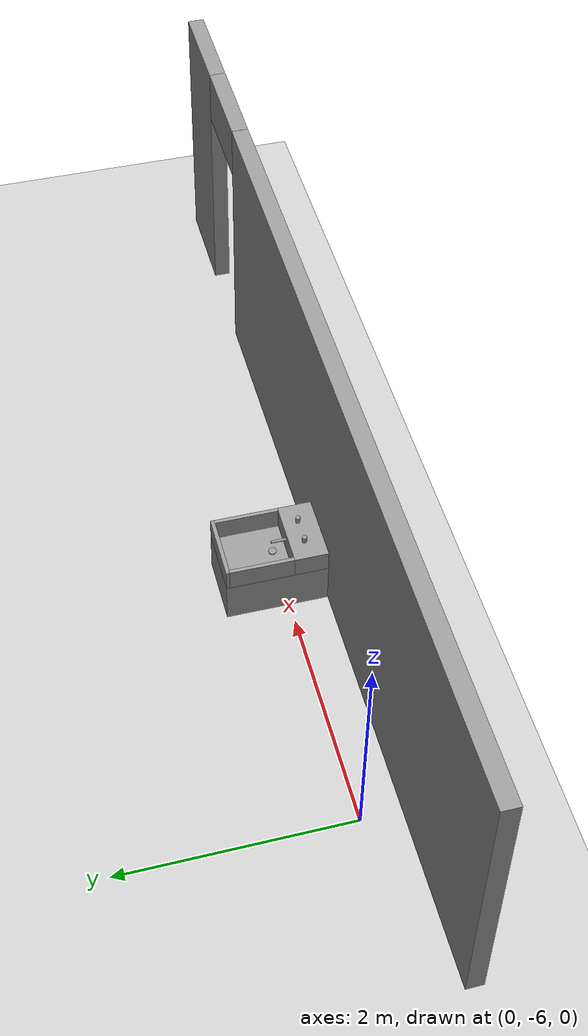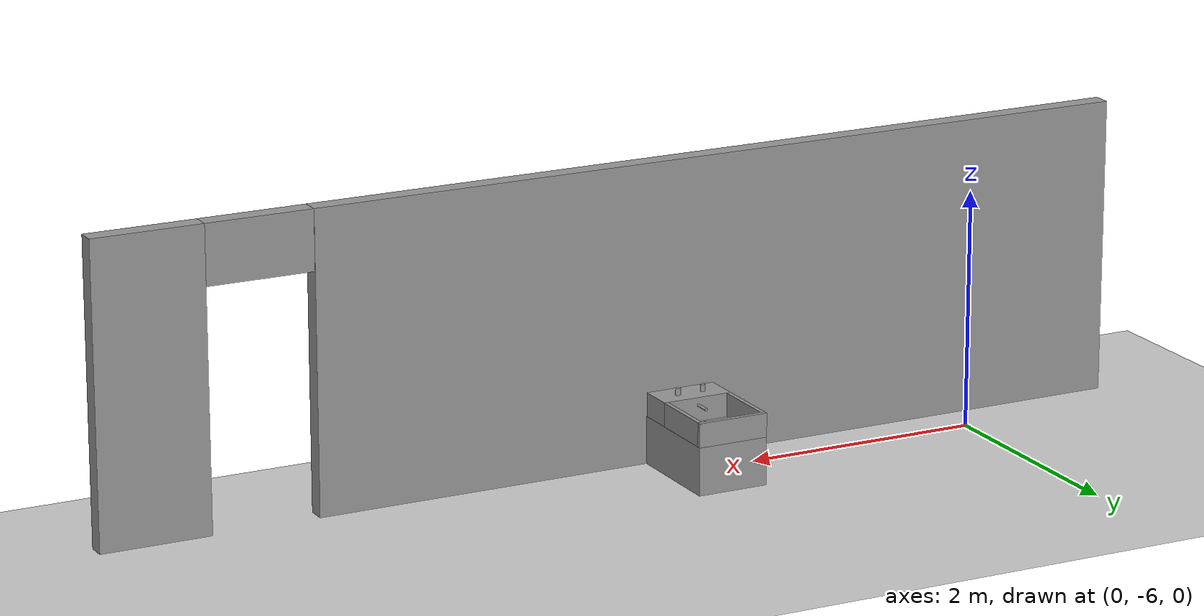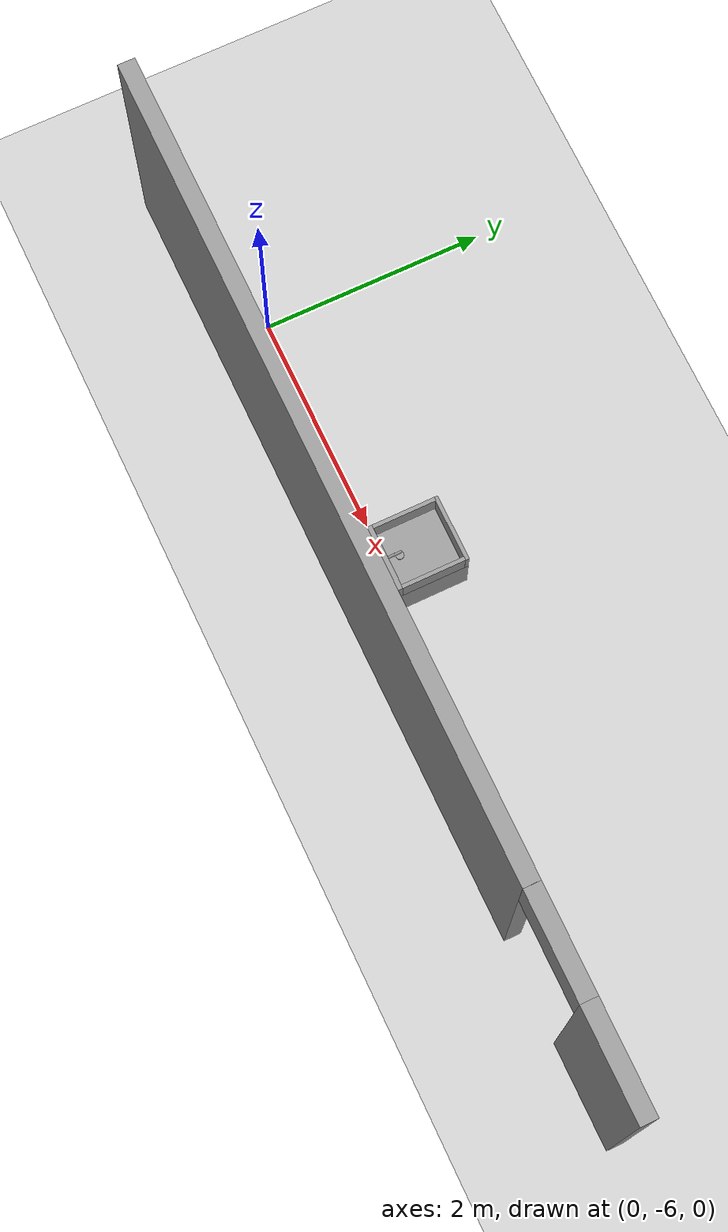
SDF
<sdf version="1.7">
 <world name="default">
  <model name="ground_plane">
   <static>1</static>
   <link name="link">
    <collision name="collision">
     <geometry><plane><normal>0 0 1</normal><size>100 100</size></plane></geometry>
     <surface>
      <contact><collide_bitmask>65535</collide_bitmask></contact>
      <friction><ode><mu>100</mu><mu2>50</mu2></ode></friction>
     </surface>
    </collision>
    <visual name="visual">
     <cast_shadows>0</cast_shadows>
     <geometry><plane><normal>0 0 1</normal><size>100 100</size></plane></geometry>
     <material>
      <script><uri>file://media/materials/scripts/gazebo.material</uri><name>Gazebo/Grey</name></script>
     </material>
    </visual>
   </link>
  </model>
  <model name="my_building_p4">
   <link name="Wall_32">
    <pose>2.925 -9.38492 0 0 -0 0</pose>
    <inertial>
     <mass>1</mass>
     <inertia><ixx>1</ixx><ixy>0</ixy><ixz>0</ixz><iyy>1</iyy><iyz>0</iyz><izz>1</izz></inertia>
    </inertial>
    <visual name="Wall_32_Visual_1">
     <pose>4.11059 0 1.25 0 -0 0</pose>
     <geometry><box><size>0.928826 0.15 2.5</size></box></geometry>
     <material>
      <script><uri>file://media/materials/scripts/gazebo.material</uri><name>Gazebo/Grey</name></script>
      <ambient>1 1 1 1</ambient>
      <shader type="pixel"><normal_map>__default__</normal_map></shader>
      <diffuse>0.7 0.7 0.7 1</diffuse>
      <specular>0.01 0.01 0.01 1</specular>
      <emissive>0 0 0 1</emissive>
     </material>
     <meta><layer>0</layer></meta>
    </visual>
    <visual name="Wall_32_Visual_2">
     <pose>3.19617 0 2.25 0 -0 0</pose>
     <geometry><box><size>0.9 0.15 0.5</size></box></geometry>
     <material>
      <script><uri>file://media/materials/scripts/gazebo.material</uri><name>Gazebo/Grey</name></script>
      <ambient>1 1 1 1</ambient>
      <shader type="pixel"><normal_map>__default__</normal_map></shader>
      <diffuse>0.7 0.7 0.7 1</diffuse>
      <specular>0.01 0.01 0.01 1</specular>
      <emissive>0 0 0 1</emissive>
     </material>
     <meta><layer>0</layer></meta>
    </visual>
    <visual name="Wall_32_Visual_0">
     <pose>-0.84 0 1.25 0 -0 0</pose>
     <geometry><box><size>7.17 0.15 2.5</size></box></geometry>
     <material>
      <script><uri>file://media/materials/scripts/gazebo.material</uri><name>Gazebo/Grey</name></script>
      <ambient>1 1 1 1</ambient>
      <shader type="pixel"><normal_map>__default__</normal_map></shader>
      <diffuse>0.7 0.7 0.7 1</diffuse>
      <specular>0.01 0.01 0.01 1</specular>
      <emissive>0 0 0 1</emissive>
     </material>
     <meta><layer>0</layer></meta>
    </visual>
    <collision name="Wall_32_Collision_1">
     <pose>4.11059 0 1.25 0 -0 0</pose>
     <geometry><box><size>0.928826 0.15 2.5</size></box></geometry>
     <surface>
      <friction>
       <ode><mu>1</mu><mu2>1</mu2><fdir1>0 0 0</fdir1><slip1>0</slip1><slip2>0</slip2></ode>
       <torsional>
        <coefficient>1</coefficient>
        <patch_radius>0</patch_radius>
        <surface_radius>0</surface_radius>
        <use_patch_radius>1</use_patch_radius>
        <ode><slip>0</slip></ode>
       </torsional>
      </friction>
      <bounce><restitution_coefficient>0</restitution_coefficient><threshold>1e+06</threshold></bounce>
      <contact>
       <collide_without_contact>0</collide_without_contact>
       <collide_without_contact_bitmask>1</collide_without_contact_bitmask>
       <collide_bitmask>1</collide_bitmask>
       <ode>
        <soft_cfm>0</soft_cfm>
        <soft_erp>0.2</soft_erp>
        <kp>1e+13</kp>
        <kd>1</kd>
        <max_vel>0.01</max_vel>
        <min_depth>0</min_depth>
       </ode>
       <bullet>
        <split_impulse>1</split_impulse>
        <split_impulse_penetration_threshold>-0.01</split_impulse_penetration_threshold>
        <soft_cfm>0</soft_cfm>
        <soft_erp>0.2</soft_erp>
        <kp>1e+13</kp>
        <kd>1</kd>
       </bullet>
      </contact>
     </surface>
    </collision>
    <collision name="Wall_32_Collision_0">
     <pose>-0.84 0 1.25 0 -0 0</pose>
     <geometry><box><size>7.17 0.15 2.5</size></box></geometry>
     <surface>
      <friction>
       <ode><mu>1</mu><mu2>1</mu2><fdir1>0 0 0</fdir1><slip1>0</slip1><slip2>0</slip2></ode>
       <torsional>
        <coefficient>1</coefficient>
        <patch_radius>0</patch_radius>
        <surface_radius>0</surface_radius>
        <use_patch_radius>1</use_patch_radius>
        <ode><slip>0</slip></ode>
       </torsional>
      </friction>
      <bounce><restitution_coefficient>0</restitution_coefficient><threshold>1e+06</threshold></bounce>
      <contact>
       <collide_without_contact>0</collide_without_contact>
       <collide_without_contact_bitmask>1</collide_without_contact_bitmask>
       <collide_bitmask>1</collide_bitmask>
       <ode>
        <soft_cfm>0</soft_cfm>
        <soft_erp>0.2</soft_erp>
        <kp>1e+13</kp>
        <kd>1</kd>
        <max_vel>0.01</max_vel>
        <min_depth>0</min_depth>
       </ode>
       <bullet>
        <split_impulse>1</split_impulse>
        <split_impulse_penetration_threshold>-0.01</split_impulse_penetration_threshold>
        <soft_cfm>0</soft_cfm>
        <soft_erp>0.2</soft_erp>
        <kp>1e+13</kp>
        <kd>1</kd>
       </bullet>
      </contact>
     </surface>
    </collision>
    <collision name="Wall_32_Collision_2">
     <pose>3.19617 0 2.25 0 -0 0</pose>
     <geometry><box><size>0.9 0.15 0.5</size></box></geometry>
     <surface>
      <friction>
       <ode><mu>1</mu><mu2>1</mu2><fdir1>0 0 0</fdir1><slip1>0</slip1><slip2>0</slip2></ode>
       <torsional>
        <coefficient>1</coefficient>
        <patch_radius>0</patch_radius>
        <surface_radius>0</surface_radius>
        <use_patch_radius>1</use_patch_radius>
        <ode><slip>0</slip></ode>
       </torsional>
      </friction>
      <bounce><restitution_coefficient>0</restitution_coefficient><threshold>1e+06</threshold></bounce>
      <contact>
       <collide_without_contact>0</collide_without_contact>
       <collide_without_contact_bitmask>1</collide_without_contact_bitmask>
       <collide_bitmask>1</collide_bitmask>
       <ode>
        <soft_cfm>0</soft_cfm>
        <soft_erp>0.2</soft_erp>
        <kp>1e+13</kp>
        <kd>1</kd>
        <max_vel>0.01</max_vel>
        <min_depth>0</min_depth>
       </ode>
       <bullet>
        <split_impulse>1</split_impulse>
        <split_impulse_penetration_threshold>-0.01</split_impulse_penetration_threshold>
        <soft_cfm>0</soft_cfm>
        <soft_erp>0.2</soft_erp>
        <kp>1e+13</kp>
        <kd>1</kd>
       </bullet>
      </contact>
     </surface>
    </collision>
   </link>
   <static>1</static>
   <pose>-0.017657 2.964 0 0 -0 0</pose>
  </model>
  <model name="my_bidet">
   <link name="link_2">
    <inertial>
     <mass>1</mass>
     <inertia>
      <ixx>0.166667</ixx>
      <ixy>0</ixy>
      <ixz>0</ixz>
      <iyy>0.166667</iyy>
      <iyz>0</iyz>
      <izz>0.166667</izz>
     </inertia>
    </inertial>
    <pose>-0.099981 0.092319 0 0 -0 0</pose>
    <visual name="visual">
     <pose>0 0 0.2 0 -0 0</pose>
     <geometry><box><size>0.6 0.9 0.4</size></box></geometry>
     <material>
      <lighting>1</lighting>
      <script><uri>file://media/materials/scripts/gazebo.material</uri><name>Gazebo/Grey</name></script>
      <shader type="pixel"><normal_map>__default__</normal_map></shader>
      <ambient>0.9 0.9 0.9 1</ambient>
      <diffuse>0.9 0.9 0.9 1</diffuse>
      <specular>0.01 0.01 0.01 1</specular>
      <emissive>0 0 0 1</emissive>
     </material>
    </visual>
    <collision name="collision">
     <pose>0 0 0.2 0 -0 0</pose>
     <geometry><box><size>0.6 0.9 0.4</size></box></geometry>
     <surface>
      <friction>
       <ode><mu>1</mu><mu2>1</mu2><fdir1>0 0 0</fdir1><slip1>0</slip1><slip2>0</slip2></ode>
       <torsional>
        <coefficient>1</coefficient>
        <patch_radius>0</patch_radius>
        <surface_radius>0</surface_radius>
        <use_patch_radius>1</use_patch_radius>
        <ode><slip>0</slip></ode>
       </torsional>
      </friction>
      <bounce><restitution_coefficient>0</restitution_coefficient><threshold>1e+06</threshold></bounce>
      <contact>
       <collide_without_contact>0</collide_without_contact>
       <collide_without_contact_bitmask>1</collide_without_contact_bitmask>
       <collide_bitmask>1</collide_bitmask>
       <ode>
        <soft_cfm>0</soft_cfm>
        <soft_erp>0.2</soft_erp>
        <kp>1e+13</kp>
        <kd>1</kd>
        <max_vel>0.01</max_vel>
        <min_depth>0</min_depth>
       </ode>
       <bullet>
        <split_impulse>1</split_impulse>
        <split_impulse_penetration_threshold>-0.01</split_impulse_penetration_threshold>
        <soft_cfm>0</soft_cfm>
        <soft_erp>0.2</soft_erp>
        <kp>1e+13</kp>
        <kd>1</kd>
       </bullet>
      </contact>
     </surface>
    </collision>
   </link>
   <link name="link_0">
    <inertial>
     <mass>1</mass>
     <inertia><ixx>0.145833</ixx><ixy>0</ixy><ixz>0</ixz><iyy>0.145833</iyy><iyz>0</iyz><izz>0.125</izz></inertia>
    </inertial>
    <pose>-0.107898 0.002946 0.537008 0 -0 0</pose>
    <gravity>0</gravity>
    <visual name="visual">
     <pose>0 0 0 1.5707 -0 0</pose>
     <geometry><cylinder><radius>0.012</radius><length>0.15</length></cylinder></geometry>
     <material>
      <lighting>1</lighting>
      <script><uri>file://media/materials/scripts/gazebo.material</uri><name>Gazebo/Grey</name></script>
      <shader type="pixel"><normal_map>__default__</normal_map></shader>
      <ambient>0.2 0.2 0.2 1</ambient>
      <diffuse>0.2 0.2 0.2 1</diffuse>
      <specular>0.01 0.01 0.01 1</specular>
      <emissive>0 0 0 1</emissive>
     </material>
    </visual>
    <collision name="collision">
     <pose>0 0 0 1.5707 -0 0</pose>
     <geometry><cylinder><radius>0.012</radius><length>0.15</length></cylinder></geometry>
     <surface>
      <friction>
       <ode><mu>1</mu><mu2>1</mu2><fdir1>0 0 0</fdir1><slip1>0</slip1><slip2>0</slip2></ode>
       <torsional>
        <coefficient>1</coefficient>
        <patch_radius>0</patch_radius>
        <surface_radius>0</surface_radius>
        <use_patch_radius>1</use_patch_radius>
        <ode><slip>0</slip></ode>
       </torsional>
      </friction>
      <bounce><restitution_coefficient>0</restitution_coefficient><threshold>1e+06</threshold></bounce>
      <contact>
       <collide_without_contact>0</collide_without_contact>
       <collide_without_contact_bitmask>1</collide_without_contact_bitmask>
       <collide_bitmask>1</collide_bitmask>
       <ode>
        <soft_cfm>0</soft_cfm>
        <soft_erp>0.2</soft_erp>
        <kp>1e+13</kp>
        <kd>1</kd>
        <max_vel>0.01</max_vel>
        <min_depth>0</min_depth>
       </ode>
       <bullet>
        <split_impulse>1</split_impulse>
        <split_impulse_penetration_threshold>-0.01</split_impulse_penetration_threshold>
        <soft_cfm>0</soft_cfm>
        <soft_erp>0.2</soft_erp>
        <kp>1e+13</kp>
        <kd>1</kd>
       </bullet>
      </contact>
     </surface>
    </collision>
   </link>
   <link name="link_0_clone">
    <inertial>
     <mass>1</mass>
     <inertia><ixx>0.145833</ixx><ixy>0</ixy><ixz>0</ixz><iyy>0.145833</iyy><iyz>0</iyz><izz>0.125</izz></inertia>
    </inertial>
    <pose>-0.11579 0.066236 0.419967 0 -0 0</pose>
    <gravity>0</gravity>
    <visual name="visual">
     <geometry><cylinder><radius>0.035</radius><length>0.01</length></cylinder></geometry>
     <material>
      <lighting>1</lighting>
      <script><uri>file://media/materials/scripts/gazebo.material</uri><name>Gazebo/Grey</name></script>
      <shader type="pixel"><normal_map>__default__</normal_map></shader>
      <ambient>0.2 0.2 0.2 1</ambient>
      <diffuse>0.2 0.2 0.2 1</diffuse>
      <specular>0.01 0.01 0.01 1</specular>
      <emissive>0 0 0 1</emissive>
     </material>
    </visual>
    <collision name="collision">
     <geometry><cylinder><radius>0.035</radius><length>0.01</length></cylinder></geometry>
     <surface>
      <friction>
       <ode><mu>1</mu><mu2>1</mu2><fdir1>0 0 0</fdir1><slip1>0</slip1><slip2>0</slip2></ode>
       <torsional>
        <coefficient>1</coefficient>
        <patch_radius>0</patch_radius>
        <surface_radius>0</surface_radius>
        <use_patch_radius>1</use_patch_radius>
        <ode><slip>0</slip></ode>
       </torsional>
      </friction>
      <bounce><restitution_coefficient>0</restitution_coefficient><threshold>1e+06</threshold></bounce>
      <contact>
       <collide_without_contact>0</collide_without_contact>
       <collide_without_contact_bitmask>1</collide_without_contact_bitmask>
       <collide_bitmask>1</collide_bitmask>
       <ode>
        <soft_cfm>0</soft_cfm>
        <soft_erp>0.2</soft_erp>
        <kp>1e+13</kp>
        <kd>1</kd>
        <max_vel>0.01</max_vel>
        <min_depth>0</min_depth>
       </ode>
       <bullet>
        <split_impulse>1</split_impulse>
        <split_impulse_penetration_threshold>-0.01</split_impulse_penetration_threshold>
        <soft_cfm>0</soft_cfm>
        <soft_erp>0.2</soft_erp>
        <kp>1e+13</kp>
        <kd>1</kd>
       </bullet>
      </contact>
     </surface>
    </collision>
   </link>
   <link name="link_0_clone_clone">
    <inertial>
     <mass>1</mass>
     <inertia><ixx>0.145833</ixx><ixy>0</ixy><ixz>0</ixz><iyy>0.145833</iyy><iyz>0</iyz><izz>0.125</izz></inertia>
    </inertial>
    <pose>0.004222 -0.190448 0.62857 0 -0 0</pose>
    <visual name="visual">
     <geometry><cylinder><radius>0.021</radius><length>0.06</length></cylinder></geometry>
     <material>
      <lighting>1</lighting>
      <script><uri>file://media/materials/scripts/gazebo.material</uri><name>Gazebo/Grey</name></script>
      <shader type="pixel"><normal_map>__default__</normal_map></shader>
      <ambient>0.2 0.2 0.2 1</ambient>
      <diffuse>0.2 0.2 0.2 1</diffuse>
      <specular>0.01 0.01 0.01 1</specular>
      <emissive>0 0 0 1</emissive>
     </material>
    </visual>
    <collision name="collision">
     <geometry><cylinder><radius>0.021</radius><length>0.06</length></cylinder></geometry>
     <surface>
      <friction>
       <ode><mu>1</mu><mu2>1</mu2><fdir1>0 0 0</fdir1><slip1>0</slip1><slip2>0</slip2></ode>
       <torsional>
        <coefficient>1</coefficient>
        <patch_radius>0</patch_radius>
        <surface_radius>0</surface_radius>
        <use_patch_radius>1</use_patch_radius>
        <ode><slip>0</slip></ode>
       </torsional>
      </friction>
      <bounce><restitution_coefficient>0</restitution_coefficient><threshold>1e+06</threshold></bounce>
      <contact>
       <collide_without_contact>0</collide_without_contact>
       <collide_without_contact_bitmask>1</collide_without_contact_bitmask>
       <collide_bitmask>1</collide_bitmask>
       <ode>
        <soft_cfm>0</soft_cfm>
        <soft_erp>0.2</soft_erp>
        <kp>1e+13</kp>
        <kd>1</kd>
        <max_vel>0.01</max_vel>
        <min_depth>0</min_depth>
       </ode>
       <bullet>
        <split_impulse>1</split_impulse>
        <split_impulse_penetration_threshold>-0.01</split_impulse_penetration_threshold>
        <soft_cfm>0</soft_cfm>
        <soft_erp>0.2</soft_erp>
        <kp>1e+13</kp>
        <kd>1</kd>
       </bullet>
      </contact>
     </surface>
    </collision>
   </link>
   <link name="link_0_clone_clone_clone">
    <inertial>
     <mass>1</mass>
     <inertia><ixx>0.145833</ixx><ixy>0</ixy><ixz>0</ixz><iyy>0.145833</iyy><iyz>0</iyz><izz>0.125</izz></inertia>
    </inertial>
    <pose>-0.220329 -0.188869 0.62857 0 -0 0</pose>
    <visual name="visual">
     <geometry><cylinder><radius>0.021</radius><length>0.06</length></cylinder></geometry>
     <material>
      <lighting>1</lighting>
      <script><uri>file://media/materials/scripts/gazebo.material</uri><name>Gazebo/Grey</name></script>
      <shader type="pixel"><normal_map>__default__</normal_map></shader>
      <ambient>0.2 0.2 0.2 1</ambient>
      <diffuse>0.2 0.2 0.2 1</diffuse>
      <specular>0.01 0.01 0.01 1</specular>
      <emissive>0 0 0 1</emissive>
     </material>
    </visual>
    <collision name="collision">
     <geometry><cylinder><radius>0.021</radius><length>0.06</length></cylinder></geometry>
     <surface>
      <friction>
       <ode><mu>1</mu><mu2>1</mu2><fdir1>0 0 0</fdir1><slip1>0</slip1><slip2>0</slip2></ode>
       <torsional>
        <coefficient>1</coefficient>
        <patch_radius>0</patch_radius>
        <surface_radius>0</surface_radius>
        <use_patch_radius>1</use_patch_radius>
        <ode><slip>0</slip></ode>
       </torsional>
      </friction>
      <bounce><restitution_coefficient>0</restitution_coefficient><threshold>1e+06</threshold></bounce>
      <contact>
       <collide_without_contact>0</collide_without_contact>
       <collide_without_contact_bitmask>1</collide_without_contact_bitmask>
       <collide_bitmask>1</collide_bitmask>
       <ode>
        <soft_cfm>0</soft_cfm>
        <soft_erp>0.2</soft_erp>
        <kp>1e+13</kp>
        <kd>1</kd>
        <max_vel>0.01</max_vel>
        <min_depth>0</min_depth>
       </ode>
       <bullet>
        <split_impulse>1</split_impulse>
        <split_impulse_penetration_threshold>-0.01</split_impulse_penetration_threshold>
        <soft_cfm>0</soft_cfm>
        <soft_erp>0.2</soft_erp>
        <kp>1e+13</kp>
        <kd>1</kd>
       </bullet>
      </contact>
     </surface>
    </collision>
   </link>
   <link name="link_2_clone">
    <inertial>
     <mass>1</mass>
     <inertia>
      <ixx>0.166667</ixx>
      <ixy>0</ixy>
      <ixz>0</ixz>
      <iyy>0.166667</iyy>
      <iyz>0</iyz>
      <izz>0.166667</izz>
     </inertia>
    </inertial>
    <pose>-0.101165 -0.206254 0 0 -0 0</pose>
    <gravity>0</gravity>
    <visual name="visual">
     <pose>0 0 0.5 0 -0 0</pose>
     <geometry><box><size>0.6 0.3 0.2</size></box></geometry>
     <material>
      <lighting>1</lighting>
      <script><uri>file://media/materials/scripts/gazebo.material</uri><name>Gazebo/Grey</name></script>
      <shader type="pixel"><normal_map>__default__</normal_map></shader>
      <ambient>0.9 0.9 0.9 1</ambient>
      <diffuse>0.9 0.9 0.9 1</diffuse>
      <specular>0.01 0.01 0.01 1</specular>
      <emissive>0 0 0 1</emissive>
     </material>
    </visual>
    <collision name="collision">
     <pose>0 0 0.5 0 -0 0</pose>
     <geometry><box><size>0.6 0.3 0.2</size></box></geometry>
     <surface>
      <friction>
       <ode><mu>1</mu><mu2>1</mu2><fdir1>0 0 0</fdir1><slip1>0</slip1><slip2>0</slip2></ode>
       <torsional>
        <coefficient>1</coefficient>
        <patch_radius>0</patch_radius>
        <surface_radius>0</surface_radius>
        <use_patch_radius>1</use_patch_radius>
        <ode><slip>0</slip></ode>
       </torsional>
      </friction>
      <bounce><restitution_coefficient>0</restitution_coefficient><threshold>1e+06</threshold></bounce>
      <contact>
       <collide_without_contact>0</collide_without_contact>
       <collide_without_contact_bitmask>1</collide_without_contact_bitmask>
       <collide_bitmask>1</collide_bitmask>
       <ode>
        <soft_cfm>0</soft_cfm>
        <soft_erp>0.2</soft_erp>
        <kp>1e+13</kp>
        <kd>1</kd>
        <max_vel>0.01</max_vel>
        <min_depth>0</min_depth>
       </ode>
       <bullet>
        <split_impulse>1</split_impulse>
        <split_impulse_penetration_threshold>-0.01</split_impulse_penetration_threshold>
        <soft_cfm>0</soft_cfm>
        <soft_erp>0.2</soft_erp>
        <kp>1e+13</kp>
        <kd>1</kd>
       </bullet>
      </contact>
     </surface>
    </collision>
   </link>
   <link name="link_2_clone_clone">
    <inertial>
     <mass>1</mass>
     <inertia>
      <ixx>0.166667</ixx>
      <ixy>0</ixy>
      <ixz>0</ixz>
      <iyy>0.166667</iyy>
      <iyz>0</iyz>
      <izz>0.166667</izz>
     </inertia>
    </inertial>
    <pose>0.181682 0.225906 0 0 -0 0</pose>
    <gravity>0</gravity>
    <visual name="visual">
     <pose>0 0 0.5 0 -0 0</pose>
     <geometry><box><size>0.035 0.57 0.2</size></box></geometry>
     <material>
      <lighting>1</lighting>
      <script><uri>file://media/materials/scripts/gazebo.material</uri><name>Gazebo/Grey</name></script>
      <shader type="pixel"><normal_map>__default__</normal_map></shader>
      <ambient>0.9 0.9 0.9 1</ambient>
      <diffuse>0.9 0.9 0.9 1</diffuse>
      <specular>0.01 0.01 0.01 1</specular>
      <emissive>0 0 0 1</emissive>
     </material>
    </visual>
    <collision name="collision">
     <pose>0 0 0.5 0 -0 0</pose>
     <geometry><box><size>0.035 0.57 0.2</size></box></geometry>
     <surface>
      <friction>
       <ode><mu>1</mu><mu2>1</mu2><fdir1>0 0 0</fdir1><slip1>0</slip1><slip2>0</slip2></ode>
       <torsional>
        <coefficient>1</coefficient>
        <patch_radius>0</patch_radius>
        <surface_radius>0</surface_radius>
        <use_patch_radius>1</use_patch_radius>
        <ode><slip>0</slip></ode>
       </torsional>
      </friction>
      <bounce><restitution_coefficient>0</restitution_coefficient><threshold>1e+06</threshold></bounce>
      <contact>
       <collide_without_contact>0</collide_without_contact>
       <collide_without_contact_bitmask>1</collide_without_contact_bitmask>
       <collide_bitmask>1</collide_bitmask>
       <ode>
        <soft_cfm>0</soft_cfm>
        <soft_erp>0.2</soft_erp>
        <kp>1e+13</kp>
        <kd>1</kd>
        <max_vel>0.01</max_vel>
        <min_depth>0</min_depth>
       </ode>
       <bullet>
        <split_impulse>1</split_impulse>
        <split_impulse_penetration_threshold>-0.01</split_impulse_penetration_threshold>
        <soft_cfm>0</soft_cfm>
        <soft_erp>0.2</soft_erp>
        <kp>1e+13</kp>
        <kd>1</kd>
       </bullet>
      </contact>
     </surface>
    </collision>
   </link>
   <link name="link_2_clone_clone_clone">
    <inertial>
     <mass>1</mass>
     <inertia>
      <ixx>0.166667</ixx>
      <ixy>0</ixy>
      <ixz>0</ixz>
      <iyy>0.166667</iyy>
      <iyz>0</iyz>
      <izz>0.166667</izz>
     </inertia>
    </inertial>
    <pose>-0.38362 0.227608 0 0 -0 0</pose>
    <gravity>0</gravity>
    <visual name="visual">
     <pose>0 0 0.5 0 -0 0</pose>
     <geometry><box><size>0.035 0.57 0.2</size></box></geometry>
     <material>
      <lighting>1</lighting>
      <script><uri>file://media/materials/scripts/gazebo.material</uri><name>Gazebo/Grey</name></script>
      <shader type="pixel"><normal_map>__default__</normal_map></shader>
      <ambient>0.9 0.9 0.9 1</ambient>
      <diffuse>0.9 0.9 0.9 1</diffuse>
      <specular>0.01 0.01 0.01 1</specular>
      <emissive>0 0 0 1</emissive>
     </material>
    </visual>
    <collision name="collision">
     <pose>0 0 0.5 0 -0 0</pose>
     <geometry><box><size>0.035 0.57 0.2</size></box></geometry>
     <surface>
      <friction>
       <ode><mu>1</mu><mu2>1</mu2><fdir1>0 0 0</fdir1><slip1>0</slip1><slip2>0</slip2></ode>
       <torsional>
        <coefficient>1</coefficient>
        <patch_radius>0</patch_radius>
        <surface_radius>0</surface_radius>
        <use_patch_radius>1</use_patch_radius>
        <ode><slip>0</slip></ode>
       </torsional>
      </friction>
      <bounce><restitution_coefficient>0</restitution_coefficient><threshold>1e+06</threshold></bounce>
      <contact>
       <collide_without_contact>0</collide_without_contact>
       <collide_without_contact_bitmask>1</collide_without_contact_bitmask>
       <collide_bitmask>1</collide_bitmask>
       <ode>
        <soft_cfm>0</soft_cfm>
        <soft_erp>0.2</soft_erp>
        <kp>1e+13</kp>
        <kd>1</kd>
        <max_vel>0.01</max_vel>
        <min_depth>0</min_depth>
       </ode>
       <bullet>
        <split_impulse>1</split_impulse>
        <split_impulse_penetration_threshold>-0.01</split_impulse_penetration_threshold>
        <soft_cfm>0</soft_cfm>
        <soft_erp>0.2</soft_erp>
        <kp>1e+13</kp>
        <kd>1</kd>
       </bullet>
      </contact>
     </surface>
    </collision>
   </link>
   <link name="link_2_clone_clone_clone_0">
    <inertial>
     <mass>1</mass>
     <inertia>
      <ixx>0.166667</ixx>
      <ixy>0</ixy>
      <ixz>0</ixz>
      <iyy>0.166667</iyy>
      <iyz>0</iyz>
      <izz>0.166667</izz>
     </inertia>
    </inertial>
    <pose>-0.100337 0.524714 0 0 -0 0</pose>
    <gravity>0</gravity>
    <visual name="visual">
     <pose>0 0 0.5 0 -0 1.5707</pose>
     <geometry><box><size>0.035 0.6 0.2</size></box></geometry>
     <material>
      <lighting>1</lighting>
      <script><uri>file://media/materials/scripts/gazebo.material</uri><name>Gazebo/Grey</name></script>
      <shader type="pixel"><normal_map>__default__</normal_map></shader>
      <ambient>0.9 0.9 0.9 1</ambient>
      <diffuse>0.9 0.9 0.9 1</diffuse>
      <specular>0.01 0.01 0.01 1</specular>
      <emissive>0 0 0 1</emissive>
     </material>
    </visual>
    <collision name="collision">
     <pose>0 0 0.5 0 -0 1.5707</pose>
     <geometry><box><size>0.035 0.6 0.2</size></box></geometry>
     <surface>
      <friction>
       <ode><mu>1</mu><mu2>1</mu2><fdir1>0 0 0</fdir1><slip1>0</slip1><slip2>0</slip2></ode>
       <torsional>
        <coefficient>1</coefficient>
        <patch_radius>0</patch_radius>
        <surface_radius>0</surface_radius>
        <use_patch_radius>1</use_patch_radius>
        <ode><slip>0</slip></ode>
       </torsional>
      </friction>
      <bounce><restitution_coefficient>0</restitution_coefficient><threshold>1e+06</threshold></bounce>
      <contact>
       <collide_without_contact>0</collide_without_contact>
       <collide_without_contact_bitmask>1</collide_without_contact_bitmask>
       <collide_bitmask>1</collide_bitmask>
       <ode>
        <soft_cfm>0</soft_cfm>
        <soft_erp>0.2</soft_erp>
        <kp>1e+13</kp>
        <kd>1</kd>
        <max_vel>0.01</max_vel>
        <min_depth>0</min_depth>
       </ode>
       <bullet>
        <split_impulse>1</split_impulse>
        <split_impulse_penetration_threshold>-0.01</split_impulse_penetration_threshold>
        <soft_cfm>0</soft_cfm>
        <soft_erp>0.2</soft_erp>
        <kp>1e+13</kp>
        <kd>1</kd>
       </bullet>
      </contact>
     </surface>
    </collision>
   </link>
   <static>1</static>
   <pose>2.5873 -5.98457 0 0 -0 0</pose>
  </model>
 </world>
</sdf>
